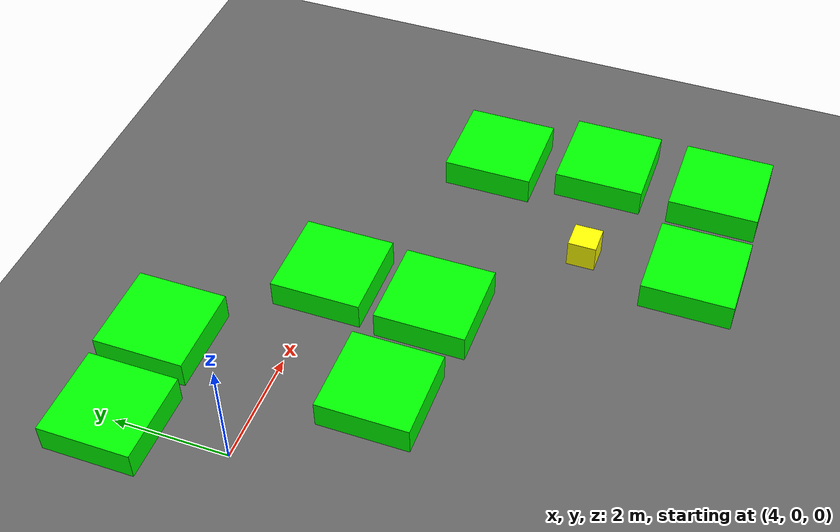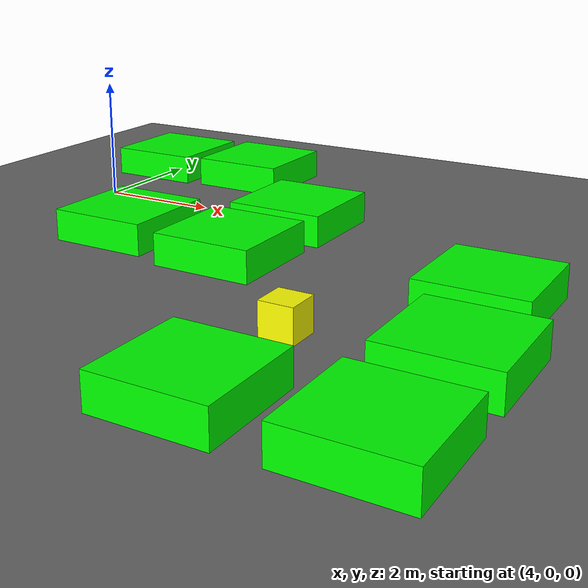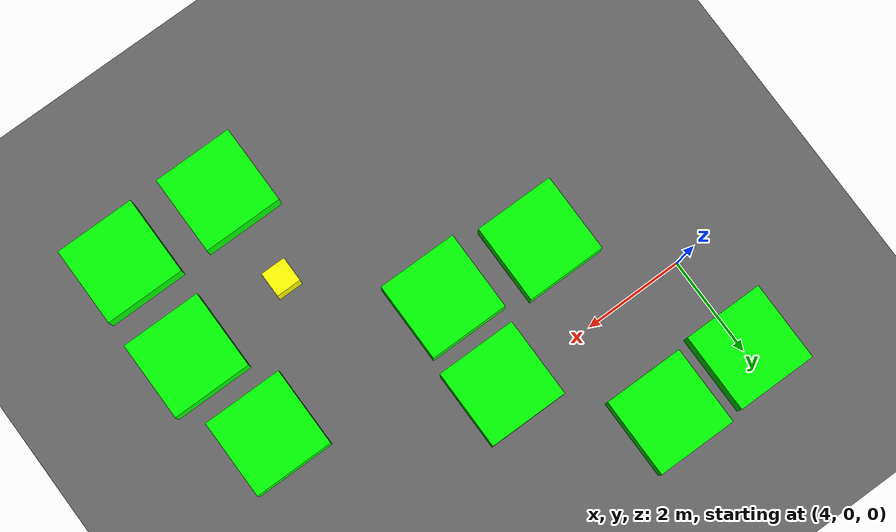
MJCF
<mujoco model="lvl5_corridor_obs15_d5_depth3_seed0">
    <compiler angle="degree" coordinate="local" inertiafromgeom="true"/>
    <option integrator="RK4" timestep="0.01"/>

    <asset>
        <texture builtin="gradient" height="100" rgb1="0.6 0.8 1" rgb2="0 0 0" type="skybox" width="100"/>
        <texture name="floor_texture" type="2d" builtin="checker" width="100" height="100" rgb1="0 0 0" rgb2="0.8 0.8 0.8"/>
        <material name="MatPlane" reflectance="0.5" shininess="1" specular="1" texrepeat="10 10" texture="floor_texture"/>
    </asset>

    <!-- Excluding the contact between the agent and the goal, and the agent and the floor -->
    <contact>
        <exclude body1="agent" body2="goal"/>
        <exclude body1 = "agent" body2 = "floor"/>
    </contact>

    <extension>
        <plugin plugin = "mujoco.pid">
            <instance name = "pid1">
                <config key="kp" value="2"/>
                <config key="ki" value="0"/>
                <config key="kd" value="55"/>
            </instance>
        </plugin>
    </extension>

    <worldbody>
        <light cutoff="100" diffuse="1 1 1" dir="-0 0 -1.3" directional="true" exponent="1" pos="0 0 1.3" specular=".1 .1 .1"/>
        <body name="floor" pos="0 0 0">
            <geom name="floor_geom" type="plane" size="20 20 0.1" material="MatPlane"/>
        </body>

                <body name="goal" pos="12.0000 -12.0000 0">
            <geom name="goal_geom" type="plane" size="0.5 0.5 1" pos="0 0 0" rgba="1 0 0 1"/>
        </body>

                <body name="agent" pos="10.0000 -4.0000 0.250">
            <joint name="j1" type="slide" axis ="1 0 0 "/>
            <joint name="j2" type="slide" axis ="0 1 0 "/>
            <geom name="agent_geom" type="box" size="0.25 0.25 0.250" rgba="1 1 0 1"/>
        </body>

        <body name="obstacle1" pos="3.9582 2.0015 0.250">  <geom name="obstacle1_geom" type="box" size="0.8000 0.8000 0.250" rgba="0 1 0 1"/></body>
        <body name="obstacle2" pos="5.8083 2.0810 0.250">  <geom name="obstacle2_geom" type="box" size="0.8000 0.8000 0.250" rgba="0 1 0 1"/></body>
        <body name="obstacle3" pos="7.9262 -0.0963 0.250">  <geom name="obstacle3_geom" type="box" size="0.8000 0.8000 0.250" rgba="0 1 0 1"/></body>
        <body name="obstacle4" pos="5.8115 -1.8016 0.250">  <geom name="obstacle4_geom" type="box" size="0.8000 0.8000 0.250" rgba="0 1 0 1"/></body>
        <body name="obstacle5" pos="7.8515 -1.9884 0.250">  <geom name="obstacle5_geom" type="box" size="0.8000 0.8000 0.250" rgba="0 1 0 1"/></body>
        <body name="obstacle6" pos="11.8178 -1.8526 0.250">  <geom name="obstacle6_geom" type="box" size="0.8000 0.8000 0.250" rgba="0 1 0 1"/></body>
        <body name="obstacle7" pos="12.1900 -3.8503 0.250">  <geom name="obstacle7_geom" type="box" size="0.8000 0.8000 0.250" rgba="0 1 0 1"/></body>
        <body name="obstacle8" pos="9.9953 -5.9722 0.250">  <geom name="obstacle8_geom" type="box" size="0.8000 0.8000 0.250" rgba="0 1 0 1"/></body>
        <body name="obstacle9" pos="12.1757 -5.9512 0.250">  <geom name="obstacle9_geom" type="box" size="0.8000 0.8000 0.250" rgba="0 1 0 1"/></body>

    </worldbody>

    <sensor>
<!-- SENSORS -->

        <distance name="dist1" geom1="agent_geom" geom2="obstacle1_geom" cutoff="1.5"/>
        <distance name="dist2" geom1="agent_geom" geom2="obstacle2_geom" cutoff="1.5"/>
        <distance name="dist3" geom1="agent_geom" geom2="obstacle3_geom" cutoff="1.5"/>
        <distance name="dist4" geom1="agent_geom" geom2="obstacle4_geom" cutoff="1.5"/>
        <distance name="dist5" geom1="agent_geom" geom2="obstacle5_geom" cutoff="1.5"/>
        <distance name="dist6" geom1="agent_geom" geom2="obstacle6_geom" cutoff="1.5"/>
        <distance name="dist7" geom1="agent_geom" geom2="obstacle7_geom" cutoff="1.5"/>
        <distance name="dist8" geom1="agent_geom" geom2="obstacle8_geom" cutoff="1.5"/>
        <distance name="dist9" geom1="agent_geom" geom2="obstacle9_geom" cutoff="1.5"/>
</sensor>

    <actuator>
        <plugin joint="j1" plugin="mujoco.pid" instance="pid1" />
        <plugin joint="j2" plugin="mujoco.pid" instance="pid1"/>
    </actuator>
</mujoco>
